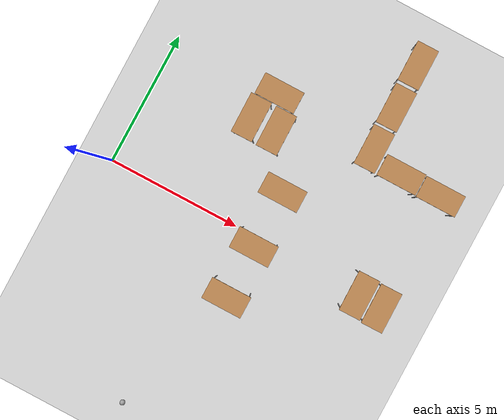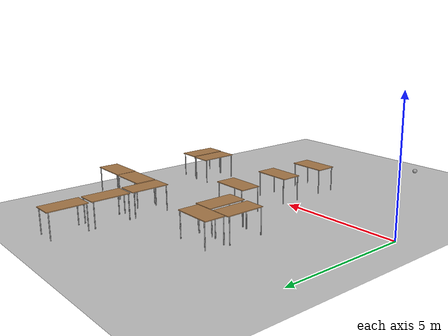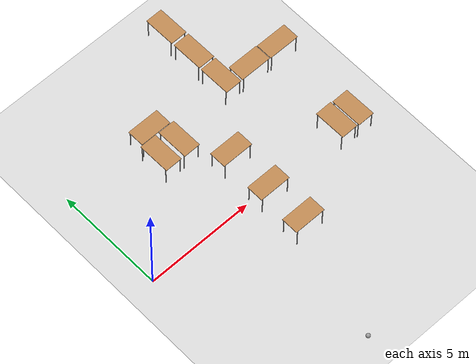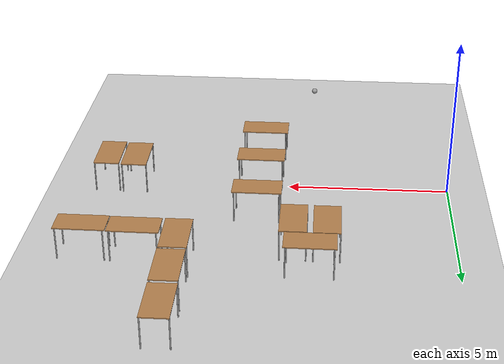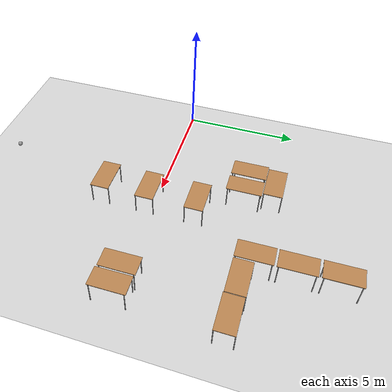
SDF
<sdf version="1.6">
 <world name="default">
  <model name="ground_plane">
   <static>1</static>
   <link name="link">
    <collision name="collision">
     <geometry><plane><normal>0 0 1</normal><size>100 100</size></plane></geometry>
     <surface><friction><ode><mu>100</mu><mu2>50</mu2></ode></friction></surface>
    </collision>
    <visual name="visual">
     <cast_shadows>0</cast_shadows>
     <geometry><plane><normal>0 0 1</normal><size>100 100</size></plane></geometry>
     <material>
      <script><uri>file://media/materials/scripts/gazebo.material</uri><name>Gazebo/Grey</name></script>
     </material>
    </visual>
   </link>
  </model>
  <model name="table">
   <static>1</static>
   <link name="link">
    <collision name="surface">
     <pose>0 0 1 0 -0 0</pose>
     <geometry><box><size>1.5 0.8 0.03</size></box></geometry>
     <surface><friction><ode><mu>0.6</mu><mu2>0.6</mu2></ode></friction></surface>
    </collision>
    <visual name="visual1">
     <pose>0 0 1 0 -0 0</pose>
     <geometry><box><size>1.5 0.8 0.03</size></box></geometry>
     <material>
      <script><uri>file://media/materials/scripts/gazebo.material</uri><name>Gazebo/Wood</name></script>
     </material>
    </visual>
    <collision name="front_left_leg">
     <pose>0.68 0.38 0.5 0 -0 0</pose>
     <geometry><cylinder><radius>0.02</radius><length>1</length></cylinder></geometry>
    </collision>
    <visual name="front_left_leg">
     <pose>0.68 0.38 0.5 0 -0 0</pose>
     <geometry><cylinder><radius>0.02</radius><length>1</length></cylinder></geometry>
     <material>
      <script><uri>file://media/materials/scripts/gazebo.material</uri><name>Gazebo/Grey</name></script>
     </material>
    </visual>
    <collision name="front_right_leg">
     <pose>0.68 -0.38 0.5 0 -0 0</pose>
     <geometry><cylinder><radius>0.02</radius><length>1</length></cylinder></geometry>
    </collision>
    <visual name="front_right_leg">
     <pose>0.68 -0.38 0.5 0 -0 0</pose>
     <geometry><cylinder><radius>0.02</radius><length>1</length></cylinder></geometry>
     <material>
      <script><uri>file://media/materials/scripts/gazebo.material</uri><name>Gazebo/Grey</name></script>
     </material>
    </visual>
    <collision name="back_right_leg">
     <pose>-0.68 -0.38 0.5 0 -0 0</pose>
     <geometry><cylinder><radius>0.02</radius><length>1</length></cylinder></geometry>
    </collision>
    <visual name="back_right_leg">
     <pose>-0.68 -0.38 0.5 0 -0 0</pose>
     <geometry><cylinder><radius>0.02</radius><length>1</length></cylinder></geometry>
     <material>
      <script><uri>file://media/materials/scripts/gazebo.material</uri><name>Gazebo/Grey</name></script>
     </material>
    </visual>
    <collision name="back_left_leg">
     <pose>-0.68 0.38 0.5 0 -0 0</pose>
     <geometry><cylinder><radius>0.02</radius><length>1</length></cylinder></geometry>
    </collision>
    <visual name="back_left_leg">
     <pose>-0.68 0.38 0.5 0 -0 0</pose>
     <geometry><cylinder><radius>0.02</radius><length>1</length></cylinder></geometry>
     <material>
      <script><uri>file://media/materials/scripts/gazebo.material</uri><name>Gazebo/Grey</name></script>
     </material>
    </visual>
   </link>
   <pose>9.1747 4.28247 0 0 -0 0</pose>
  </model>
  <model name="table_clone">
   <static>1</static>
   <link name="link">
    <collision name="surface">
     <pose>0 0 1 0 -0 0</pose>
     <geometry><box><size>1.5 0.8 0.03</size></box></geometry>
     <surface><friction><ode><mu>0.6</mu><mu2>0.6</mu2></ode></friction></surface>
    </collision>
    <visual name="visual1">
     <pose>0 0 1 0 -0 0</pose>
     <geometry><box><size>1.5 0.8 0.03</size></box></geometry>
     <material>
      <script><uri>file://media/materials/scripts/gazebo.material</uri><name>Gazebo/Wood</name></script>
     </material>
    </visual>
    <collision name="front_left_leg">
     <pose>0.68 0.38 0.5 0 -0 0</pose>
     <geometry><cylinder><radius>0.02</radius><length>1</length></cylinder></geometry>
    </collision>
    <visual name="front_left_leg">
     <pose>0.68 0.38 0.5 0 -0 0</pose>
     <geometry><cylinder><radius>0.02</radius><length>1</length></cylinder></geometry>
     <material>
      <script><uri>file://media/materials/scripts/gazebo.material</uri><name>Gazebo/Grey</name></script>
     </material>
    </visual>
    <collision name="front_right_leg">
     <pose>0.68 -0.38 0.5 0 -0 0</pose>
     <geometry><cylinder><radius>0.02</radius><length>1</length></cylinder></geometry>
    </collision>
    <visual name="front_right_leg">
     <pose>0.68 -0.38 0.5 0 -0 0</pose>
     <geometry><cylinder><radius>0.02</radius><length>1</length></cylinder></geometry>
     <material>
      <script><uri>file://media/materials/scripts/gazebo.material</uri><name>Gazebo/Grey</name></script>
     </material>
    </visual>
    <collision name="back_right_leg">
     <pose>-0.68 -0.38 0.5 0 -0 0</pose>
     <geometry><cylinder><radius>0.02</radius><length>1</length></cylinder></geometry>
    </collision>
    <visual name="back_right_leg">
     <pose>-0.68 -0.38 0.5 0 -0 0</pose>
     <geometry><cylinder><radius>0.02</radius><length>1</length></cylinder></geometry>
     <material>
      <script><uri>file://media/materials/scripts/gazebo.material</uri><name>Gazebo/Grey</name></script>
     </material>
    </visual>
    <collision name="back_left_leg">
     <pose>-0.68 0.38 0.5 0 -0 0</pose>
     <geometry><cylinder><radius>0.02</radius><length>1</length></cylinder></geometry>
    </collision>
    <visual name="back_left_leg">
     <pose>-0.68 0.38 0.5 0 -0 0</pose>
     <geometry><cylinder><radius>0.02</radius><length>1</length></cylinder></geometry>
     <material>
      <script><uri>file://media/materials/scripts/gazebo.material</uri><name>Gazebo/Grey</name></script>
     </material>
    </visual>
   </link>
   <pose>10.7045 4.25971 0 0 -0 0</pose>
  </model>
  <model name="table_clone_3">
   <static>1</static>
   <link name="link">
    <collision name="surface">
     <pose>0 0 1 0 -0 0</pose>
     <geometry><box><size>1.5 0.8 0.03</size></box></geometry>
     <surface><friction><ode><mu>0.6</mu><mu2>0.6</mu2></ode></friction></surface>
    </collision>
    <visual name="visual1">
     <pose>0 0 1 0 -0 0</pose>
     <geometry><box><size>1.5 0.8 0.03</size></box></geometry>
     <material>
      <script><uri>file://media/materials/scripts/gazebo.material</uri><name>Gazebo/Wood</name></script>
     </material>
    </visual>
    <collision name="front_left_leg">
     <pose>0.68 0.38 0.5 0 -0 0</pose>
     <geometry><cylinder><radius>0.02</radius><length>1</length></cylinder></geometry>
    </collision>
    <visual name="front_left_leg">
     <pose>0.68 0.38 0.5 0 -0 0</pose>
     <geometry><cylinder><radius>0.02</radius><length>1</length></cylinder></geometry>
     <material>
      <script><uri>file://media/materials/scripts/gazebo.material</uri><name>Gazebo/Grey</name></script>
     </material>
    </visual>
    <collision name="front_right_leg">
     <pose>0.68 -0.38 0.5 0 -0 0</pose>
     <geometry><cylinder><radius>0.02</radius><length>1</length></cylinder></geometry>
    </collision>
    <visual name="front_right_leg">
     <pose>0.68 -0.38 0.5 0 -0 0</pose>
     <geometry><cylinder><radius>0.02</radius><length>1</length></cylinder></geometry>
     <material>
      <script><uri>file://media/materials/scripts/gazebo.material</uri><name>Gazebo/Grey</name></script>
     </material>
    </visual>
    <collision name="back_right_leg">
     <pose>-0.68 -0.38 0.5 0 -0 0</pose>
     <geometry><cylinder><radius>0.02</radius><length>1</length></cylinder></geometry>
    </collision>
    <visual name="back_right_leg">
     <pose>-0.68 -0.38 0.5 0 -0 0</pose>
     <geometry><cylinder><radius>0.02</radius><length>1</length></cylinder></geometry>
     <material>
      <script><uri>file://media/materials/scripts/gazebo.material</uri><name>Gazebo/Grey</name></script>
     </material>
    </visual>
    <collision name="back_left_leg">
     <pose>-0.68 0.38 0.5 0 -0 0</pose>
     <geometry><cylinder><radius>0.02</radius><length>1</length></cylinder></geometry>
    </collision>
    <visual name="back_left_leg">
     <pose>-0.68 0.38 0.5 0 -0 0</pose>
     <geometry><cylinder><radius>0.02</radius><length>1</length></cylinder></geometry>
     <material>
      <script><uri>file://media/materials/scripts/gazebo.material</uri><name>Gazebo/Grey</name></script>
     </material>
    </visual>
   </link>
   <pose>7.94216 4.62597 0 0 0 -1.56261</pose>
  </model>
  <model name="table_clone_3_clone">
   <static>1</static>
   <link name="link">
    <collision name="surface">
     <pose>0 0 1 0 -0 0</pose>
     <geometry><box><size>1.5 0.8 0.03</size></box></geometry>
     <surface><friction><ode><mu>0.6</mu><mu2>0.6</mu2></ode></friction></surface>
    </collision>
    <visual name="visual1">
     <pose>0 0 1 0 -0 0</pose>
     <geometry><box><size>1.5 0.8 0.03</size></box></geometry>
     <material>
      <script><uri>file://media/materials/scripts/gazebo.material</uri><name>Gazebo/Wood</name></script>
     </material>
    </visual>
    <collision name="front_left_leg">
     <pose>0.68 0.38 0.5 0 -0 0</pose>
     <geometry><cylinder><radius>0.02</radius><length>1</length></cylinder></geometry>
    </collision>
    <visual name="front_left_leg">
     <pose>0.68 0.38 0.5 0 -0 0</pose>
     <geometry><cylinder><radius>0.02</radius><length>1</length></cylinder></geometry>
     <material>
      <script><uri>file://media/materials/scripts/gazebo.material</uri><name>Gazebo/Grey</name></script>
     </material>
    </visual>
    <collision name="front_right_leg">
     <pose>0.68 -0.38 0.5 0 -0 0</pose>
     <geometry><cylinder><radius>0.02</radius><length>1</length></cylinder></geometry>
    </collision>
    <visual name="front_right_leg">
     <pose>0.68 -0.38 0.5 0 -0 0</pose>
     <geometry><cylinder><radius>0.02</radius><length>1</length></cylinder></geometry>
     <material>
      <script><uri>file://media/materials/scripts/gazebo.material</uri><name>Gazebo/Grey</name></script>
     </material>
    </visual>
    <collision name="back_right_leg">
     <pose>-0.68 -0.38 0.5 0 -0 0</pose>
     <geometry><cylinder><radius>0.02</radius><length>1</length></cylinder></geometry>
    </collision>
    <visual name="back_right_leg">
     <pose>-0.68 -0.38 0.5 0 -0 0</pose>
     <geometry><cylinder><radius>0.02</radius><length>1</length></cylinder></geometry>
     <material>
      <script><uri>file://media/materials/scripts/gazebo.material</uri><name>Gazebo/Grey</name></script>
     </material>
    </visual>
    <collision name="back_left_leg">
     <pose>-0.68 0.38 0.5 0 -0 0</pose>
     <geometry><cylinder><radius>0.02</radius><length>1</length></cylinder></geometry>
    </collision>
    <visual name="back_left_leg">
     <pose>-0.68 0.38 0.5 0 -0 0</pose>
     <geometry><cylinder><radius>0.02</radius><length>1</length></cylinder></geometry>
     <material>
      <script><uri>file://media/materials/scripts/gazebo.material</uri><name>Gazebo/Grey</name></script>
     </material>
    </visual>
   </link>
   <pose>7.93938 6.21613 0 0 0 -1.56261</pose>
  </model>
  <model name="table_clone_3_clone_0">
   <static>1</static>
   <link name="link">
    <collision name="surface">
     <pose>0 0 1 0 -0 0</pose>
     <geometry><box><size>1.5 0.8 0.03</size></box></geometry>
     <surface><friction><ode><mu>0.6</mu><mu2>0.6</mu2></ode></friction></surface>
    </collision>
    <visual name="visual1">
     <pose>0 0 1 0 -0 0</pose>
     <geometry><box><size>1.5 0.8 0.03</size></box></geometry>
     <material>
      <script><uri>file://media/materials/scripts/gazebo.material</uri><name>Gazebo/Wood</name></script>
     </material>
    </visual>
    <collision name="front_left_leg">
     <pose>0.68 0.38 0.5 0 -0 0</pose>
     <geometry><cylinder><radius>0.02</radius><length>1</length></cylinder></geometry>
    </collision>
    <visual name="front_left_leg">
     <pose>0.68 0.38 0.5 0 -0 0</pose>
     <geometry><cylinder><radius>0.02</radius><length>1</length></cylinder></geometry>
     <material>
      <script><uri>file://media/materials/scripts/gazebo.material</uri><name>Gazebo/Grey</name></script>
     </material>
    </visual>
    <collision name="front_right_leg">
     <pose>0.68 -0.38 0.5 0 -0 0</pose>
     <geometry><cylinder><radius>0.02</radius><length>1</length></cylinder></geometry>
    </collision>
    <visual name="front_right_leg">
     <pose>0.68 -0.38 0.5 0 -0 0</pose>
     <geometry><cylinder><radius>0.02</radius><length>1</length></cylinder></geometry>
     <material>
      <script><uri>file://media/materials/scripts/gazebo.material</uri><name>Gazebo/Grey</name></script>
     </material>
    </visual>
    <collision name="back_right_leg">
     <pose>-0.68 -0.38 0.5 0 -0 0</pose>
     <geometry><cylinder><radius>0.02</radius><length>1</length></cylinder></geometry>
    </collision>
    <visual name="back_right_leg">
     <pose>-0.68 -0.38 0.5 0 -0 0</pose>
     <geometry><cylinder><radius>0.02</radius><length>1</length></cylinder></geometry>
     <material>
      <script><uri>file://media/materials/scripts/gazebo.material</uri><name>Gazebo/Grey</name></script>
     </material>
    </visual>
    <collision name="back_left_leg">
     <pose>-0.68 0.38 0.5 0 -0 0</pose>
     <geometry><cylinder><radius>0.02</radius><length>1</length></cylinder></geometry>
    </collision>
    <visual name="back_left_leg">
     <pose>-0.68 0.38 0.5 0 -0 0</pose>
     <geometry><cylinder><radius>0.02</radius><length>1</length></cylinder></geometry>
     <material>
      <script><uri>file://media/materials/scripts/gazebo.material</uri><name>Gazebo/Grey</name></script>
     </material>
    </visual>
   </link>
   <pose>7.91682 7.82934 0 0 0 -1.56261</pose>
  </model>
  <model name="table_clone_3_clone_8">
   <static>1</static>
   <link name="link">
    <collision name="surface">
     <pose>0 0 1 0 -0 0</pose>
     <geometry><box><size>1.5 0.8 0.03</size></box></geometry>
     <surface><friction><ode><mu>0.6</mu><mu2>0.6</mu2></ode></friction></surface>
    </collision>
    <visual name="visual1">
     <pose>0 0 1 0 -0 0</pose>
     <geometry><box><size>1.5 0.8 0.03</size></box></geometry>
     <material>
      <script><uri>file://media/materials/scripts/gazebo.material</uri><name>Gazebo/Wood</name></script>
     </material>
    </visual>
    <collision name="front_left_leg">
     <pose>0.68 0.38 0.5 0 -0 0</pose>
     <geometry><cylinder><radius>0.02</radius><length>1</length></cylinder></geometry>
    </collision>
    <visual name="front_left_leg">
     <pose>0.68 0.38 0.5 0 -0 0</pose>
     <geometry><cylinder><radius>0.02</radius><length>1</length></cylinder></geometry>
     <material>
      <script><uri>file://media/materials/scripts/gazebo.material</uri><name>Gazebo/Grey</name></script>
     </material>
    </visual>
    <collision name="front_right_leg">
     <pose>0.68 -0.38 0.5 0 -0 0</pose>
     <geometry><cylinder><radius>0.02</radius><length>1</length></cylinder></geometry>
    </collision>
    <visual name="front_right_leg">
     <pose>0.68 -0.38 0.5 0 -0 0</pose>
     <geometry><cylinder><radius>0.02</radius><length>1</length></cylinder></geometry>
     <material>
      <script><uri>file://media/materials/scripts/gazebo.material</uri><name>Gazebo/Grey</name></script>
     </material>
    </visual>
    <collision name="back_right_leg">
     <pose>-0.68 -0.38 0.5 0 -0 0</pose>
     <geometry><cylinder><radius>0.02</radius><length>1</length></cylinder></geometry>
    </collision>
    <visual name="back_right_leg">
     <pose>-0.68 -0.38 0.5 0 -0 0</pose>
     <geometry><cylinder><radius>0.02</radius><length>1</length></cylinder></geometry>
     <material>
      <script><uri>file://media/materials/scripts/gazebo.material</uri><name>Gazebo/Grey</name></script>
     </material>
    </visual>
    <collision name="back_left_leg">
     <pose>-0.68 0.38 0.5 0 -0 0</pose>
     <geometry><cylinder><radius>0.02</radius><length>1</length></cylinder></geometry>
    </collision>
    <visual name="back_left_leg">
     <pose>-0.68 0.38 0.5 0 -0 0</pose>
     <geometry><cylinder><radius>0.02</radius><length>1</length></cylinder></geometry>
     <material>
      <script><uri>file://media/materials/scripts/gazebo.material</uri><name>Gazebo/Grey</name></script>
     </material>
    </visual>
   </link>
   <pose>10.7347 -0.051072 0 0 0 -1.56261</pose>
  </model>
  <model name="table_clone_3_clone_9">
   <static>1</static>
   <link name="link">
    <collision name="surface">
     <pose>0 0 1 0 -0 0</pose>
     <geometry><box><size>1.5 0.8 0.03</size></box></geometry>
     <surface><friction><ode><mu>0.6</mu><mu2>0.6</mu2></ode></friction></surface>
    </collision>
    <visual name="visual1">
     <pose>0 0 1 0 -0 0</pose>
     <geometry><box><size>1.5 0.8 0.03</size></box></geometry>
     <material>
      <script><uri>file://media/materials/scripts/gazebo.material</uri><name>Gazebo/Wood</name></script>
     </material>
    </visual>
    <collision name="front_left_leg">
     <pose>0.68 0.38 0.5 0 -0 0</pose>
     <geometry><cylinder><radius>0.02</radius><length>1</length></cylinder></geometry>
    </collision>
    <visual name="front_left_leg">
     <pose>0.68 0.38 0.5 0 -0 0</pose>
     <geometry><cylinder><radius>0.02</radius><length>1</length></cylinder></geometry>
     <material>
      <script><uri>file://media/materials/scripts/gazebo.material</uri><name>Gazebo/Grey</name></script>
     </material>
    </visual>
    <collision name="front_right_leg">
     <pose>0.68 -0.38 0.5 0 -0 0</pose>
     <geometry><cylinder><radius>0.02</radius><length>1</length></cylinder></geometry>
    </collision>
    <visual name="front_right_leg">
     <pose>0.68 -0.38 0.5 0 -0 0</pose>
     <geometry><cylinder><radius>0.02</radius><length>1</length></cylinder></geometry>
     <material>
      <script><uri>file://media/materials/scripts/gazebo.material</uri><name>Gazebo/Grey</name></script>
     </material>
    </visual>
    <collision name="back_right_leg">
     <pose>-0.68 -0.38 0.5 0 -0 0</pose>
     <geometry><cylinder><radius>0.02</radius><length>1</length></cylinder></geometry>
    </collision>
    <visual name="back_right_leg">
     <pose>-0.68 -0.38 0.5 0 -0 0</pose>
     <geometry><cylinder><radius>0.02</radius><length>1</length></cylinder></geometry>
     <material>
      <script><uri>file://media/materials/scripts/gazebo.material</uri><name>Gazebo/Grey</name></script>
     </material>
    </visual>
    <collision name="back_left_leg">
     <pose>-0.68 0.38 0.5 0 -0 0</pose>
     <geometry><cylinder><radius>0.02</radius><length>1</length></cylinder></geometry>
    </collision>
    <visual name="back_left_leg">
     <pose>-0.68 0.38 0.5 0 -0 0</pose>
     <geometry><cylinder><radius>0.02</radius><length>1</length></cylinder></geometry>
     <material>
      <script><uri>file://media/materials/scripts/gazebo.material</uri><name>Gazebo/Grey</name></script>
     </material>
    </visual>
   </link>
   <pose>9.86319 -0.016888 0 0 0 -1.56261</pose>
  </model>
  <model name="table_clone_4">
   <static>1</static>
   <link name="link">
    <collision name="surface">
     <pose>0 0 1 0 -0 0</pose>
     <geometry><box><size>1.5 0.8 0.03</size></box></geometry>
     <surface><friction><ode><mu>0.6</mu><mu2>0.6</mu2></ode></friction></surface>
    </collision>
    <visual name="visual1">
     <pose>0 0 1 0 -0 0</pose>
     <geometry><box><size>1.5 0.8 0.03</size></box></geometry>
     <material>
      <script><uri>file://media/materials/scripts/gazebo.material</uri><name>Gazebo/Wood</name></script>
     </material>
    </visual>
    <collision name="front_left_leg">
     <pose>0.68 0.38 0.5 0 -0 0</pose>
     <geometry><cylinder><radius>0.02</radius><length>1</length></cylinder></geometry>
    </collision>
    <visual name="front_left_leg">
     <pose>0.68 0.38 0.5 0 -0 0</pose>
     <geometry><cylinder><radius>0.02</radius><length>1</length></cylinder></geometry>
     <material>
      <script><uri>file://media/materials/scripts/gazebo.material</uri><name>Gazebo/Grey</name></script>
     </material>
    </visual>
    <collision name="front_right_leg">
     <pose>0.68 -0.38 0.5 0 -0 0</pose>
     <geometry><cylinder><radius>0.02</radius><length>1</length></cylinder></geometry>
    </collision>
    <visual name="front_right_leg">
     <pose>0.68 -0.38 0.5 0 -0 0</pose>
     <geometry><cylinder><radius>0.02</radius><length>1</length></cylinder></geometry>
     <material>
      <script><uri>file://media/materials/scripts/gazebo.material</uri><name>Gazebo/Grey</name></script>
     </material>
    </visual>
    <collision name="back_right_leg">
     <pose>-0.68 -0.38 0.5 0 -0 0</pose>
     <geometry><cylinder><radius>0.02</radius><length>1</length></cylinder></geometry>
    </collision>
    <visual name="back_right_leg">
     <pose>-0.68 -0.38 0.5 0 -0 0</pose>
     <geometry><cylinder><radius>0.02</radius><length>1</length></cylinder></geometry>
     <material>
      <script><uri>file://media/materials/scripts/gazebo.material</uri><name>Gazebo/Grey</name></script>
     </material>
    </visual>
    <collision name="back_left_leg">
     <pose>-0.68 0.38 0.5 0 -0 0</pose>
     <geometry><cylinder><radius>0.02</radius><length>1</length></cylinder></geometry>
    </collision>
    <visual name="back_left_leg">
     <pose>-0.68 0.38 0.5 0 -0 0</pose>
     <geometry><cylinder><radius>0.02</radius><length>1</length></cylinder></geometry>
     <material>
      <script><uri>file://media/materials/scripts/gazebo.material</uri><name>Gazebo/Grey</name></script>
     </material>
    </visual>
   </link>
   <pose>5.89886 -2.22809 0 0 -0 0</pose>
  </model>
  <model name="table_clone_5">
   <static>1</static>
   <link name="link">
    <collision name="surface">
     <pose>0 0 1 0 -0 0</pose>
     <geometry><box><size>1.5 0.8 0.03</size></box></geometry>
     <surface><friction><ode><mu>0.6</mu><mu2>0.6</mu2></ode></friction></surface>
    </collision>
    <visual name="visual1">
     <pose>0 0 1 0 -0 0</pose>
     <geometry><box><size>1.5 0.8 0.03</size></box></geometry>
     <material>
      <script><uri>file://media/materials/scripts/gazebo.material</uri><name>Gazebo/Wood</name></script>
     </material>
    </visual>
    <collision name="front_left_leg">
     <pose>0.68 0.38 0.5 0 -0 0</pose>
     <geometry><cylinder><radius>0.02</radius><length>1</length></cylinder></geometry>
    </collision>
    <visual name="front_left_leg">
     <pose>0.68 0.38 0.5 0 -0 0</pose>
     <geometry><cylinder><radius>0.02</radius><length>1</length></cylinder></geometry>
     <material>
      <script><uri>file://media/materials/scripts/gazebo.material</uri><name>Gazebo/Grey</name></script>
     </material>
    </visual>
    <collision name="front_right_leg">
     <pose>0.68 -0.38 0.5 0 -0 0</pose>
     <geometry><cylinder><radius>0.02</radius><length>1</length></cylinder></geometry>
    </collision>
    <visual name="front_right_leg">
     <pose>0.68 -0.38 0.5 0 -0 0</pose>
     <geometry><cylinder><radius>0.02</radius><length>1</length></cylinder></geometry>
     <material>
      <script><uri>file://media/materials/scripts/gazebo.material</uri><name>Gazebo/Grey</name></script>
     </material>
    </visual>
    <collision name="back_right_leg">
     <pose>-0.68 -0.38 0.5 0 -0 0</pose>
     <geometry><cylinder><radius>0.02</radius><length>1</length></cylinder></geometry>
    </collision>
    <visual name="back_right_leg">
     <pose>-0.68 -0.38 0.5 0 -0 0</pose>
     <geometry><cylinder><radius>0.02</radius><length>1</length></cylinder></geometry>
     <material>
      <script><uri>file://media/materials/scripts/gazebo.material</uri><name>Gazebo/Grey</name></script>
     </material>
    </visual>
    <collision name="back_left_leg">
     <pose>-0.68 0.38 0.5 0 -0 0</pose>
     <geometry><cylinder><radius>0.02</radius><length>1</length></cylinder></geometry>
    </collision>
    <visual name="back_left_leg">
     <pose>-0.68 0.38 0.5 0 -0 0</pose>
     <geometry><cylinder><radius>0.02</radius><length>1</length></cylinder></geometry>
     <material>
      <script><uri>file://media/materials/scripts/gazebo.material</uri><name>Gazebo/Grey</name></script>
     </material>
    </visual>
   </link>
   <pose>5.90615 -0.258997 0 0 -0 0</pose>
  </model>
  <model name="table_clone_6">
   <static>1</static>
   <link name="link">
    <collision name="surface">
     <pose>0 0 1 0 -0 0</pose>
     <geometry><box><size>1.5 0.8 0.03</size></box></geometry>
     <surface><friction><ode><mu>0.6</mu><mu2>0.6</mu2></ode></friction></surface>
    </collision>
    <visual name="visual1">
     <pose>0 0 1 0 -0 0</pose>
     <geometry><box><size>1.5 0.8 0.03</size></box></geometry>
     <material>
      <script><uri>file://media/materials/scripts/gazebo.material</uri><name>Gazebo/Wood</name></script>
     </material>
    </visual>
    <collision name="front_left_leg">
     <pose>0.68 0.38 0.5 0 -0 0</pose>
     <geometry><cylinder><radius>0.02</radius><length>1</length></cylinder></geometry>
    </collision>
    <visual name="front_left_leg">
     <pose>0.68 0.38 0.5 0 -0 0</pose>
     <geometry><cylinder><radius>0.02</radius><length>1</length></cylinder></geometry>
     <material>
      <script><uri>file://media/materials/scripts/gazebo.material</uri><name>Gazebo/Grey</name></script>
     </material>
    </visual>
    <collision name="front_right_leg">
     <pose>0.68 -0.38 0.5 0 -0 0</pose>
     <geometry><cylinder><radius>0.02</radius><length>1</length></cylinder></geometry>
    </collision>
    <visual name="front_right_leg">
     <pose>0.68 -0.38 0.5 0 -0 0</pose>
     <geometry><cylinder><radius>0.02</radius><length>1</length></cylinder></geometry>
     <material>
      <script><uri>file://media/materials/scripts/gazebo.material</uri><name>Gazebo/Grey</name></script>
     </material>
    </visual>
    <collision name="back_right_leg">
     <pose>-0.68 -0.38 0.5 0 -0 0</pose>
     <geometry><cylinder><radius>0.02</radius><length>1</length></cylinder></geometry>
    </collision>
    <visual name="back_right_leg">
     <pose>-0.68 -0.38 0.5 0 -0 0</pose>
     <geometry><cylinder><radius>0.02</radius><length>1</length></cylinder></geometry>
     <material>
      <script><uri>file://media/materials/scripts/gazebo.material</uri><name>Gazebo/Grey</name></script>
     </material>
    </visual>
    <collision name="back_left_leg">
     <pose>-0.68 0.38 0.5 0 -0 0</pose>
     <geometry><cylinder><radius>0.02</radius><length>1</length></cylinder></geometry>
    </collision>
    <visual name="back_left_leg">
     <pose>-0.68 0.38 0.5 0 -0 0</pose>
     <geometry><cylinder><radius>0.02</radius><length>1</length></cylinder></geometry>
     <material>
      <script><uri>file://media/materials/scripts/gazebo.material</uri><name>Gazebo/Grey</name></script>
     </material>
    </visual>
   </link>
   <pose>5.88642 1.84646 0 0 -0 0</pose>
  </model>
  <model name="table_clone_3_clone_8_clone">
   <static>1</static>
   <link name="link">
    <collision name="surface">
     <pose>0 0 1 0 -0 0</pose>
     <geometry><box><size>1.5 0.8 0.03</size></box></geometry>
     <surface><friction><ode><mu>0.6</mu><mu2>0.6</mu2></ode></friction></surface>
    </collision>
    <visual name="visual1">
     <pose>0 0 1 0 -0 0</pose>
     <geometry><box><size>1.5 0.8 0.03</size></box></geometry>
     <material>
      <script><uri>file://media/materials/scripts/gazebo.material</uri><name>Gazebo/Wood</name></script>
     </material>
    </visual>
    <collision name="front_left_leg">
     <pose>0.68 0.38 0.5 0 -0 0</pose>
     <geometry><cylinder><radius>0.02</radius><length>1</length></cylinder></geometry>
    </collision>
    <visual name="front_left_leg">
     <pose>0.68 0.38 0.5 0 -0 0</pose>
     <geometry><cylinder><radius>0.02</radius><length>1</length></cylinder></geometry>
     <material>
      <script><uri>file://media/materials/scripts/gazebo.material</uri><name>Gazebo/Grey</name></script>
     </material>
    </visual>
    <collision name="front_right_leg">
     <pose>0.68 -0.38 0.5 0 -0 0</pose>
     <geometry><cylinder><radius>0.02</radius><length>1</length></cylinder></geometry>
    </collision>
    <visual name="front_right_leg">
     <pose>0.68 -0.38 0.5 0 -0 0</pose>
     <geometry><cylinder><radius>0.02</radius><length>1</length></cylinder></geometry>
     <material>
      <script><uri>file://media/materials/scripts/gazebo.material</uri><name>Gazebo/Grey</name></script>
     </material>
    </visual>
    <collision name="back_right_leg">
     <pose>-0.68 -0.38 0.5 0 -0 0</pose>
     <geometry><cylinder><radius>0.02</radius><length>1</length></cylinder></geometry>
    </collision>
    <visual name="back_right_leg">
     <pose>-0.68 -0.38 0.5 0 -0 0</pose>
     <geometry><cylinder><radius>0.02</radius><length>1</length></cylinder></geometry>
     <material>
      <script><uri>file://media/materials/scripts/gazebo.material</uri><name>Gazebo/Grey</name></script>
     </material>
    </visual>
    <collision name="back_left_leg">
     <pose>-0.68 0.38 0.5 0 -0 0</pose>
     <geometry><cylinder><radius>0.02</radius><length>1</length></cylinder></geometry>
    </collision>
    <visual name="back_left_leg">
     <pose>-0.68 0.38 0.5 0 -0 0</pose>
     <geometry><cylinder><radius>0.02</radius><length>1</length></cylinder></geometry>
     <material>
      <script><uri>file://media/materials/scripts/gazebo.material</uri><name>Gazebo/Grey</name></script>
     </material>
    </visual>
   </link>
   <pose>4.7121 3.5876 0 0 0 -1.56261</pose>
  </model>
  <model name="table_clone_3_clone_8_clone_0">
   <static>1</static>
   <link name="link">
    <collision name="surface">
     <pose>0 0 1 0 -0 0</pose>
     <geometry><box><size>1.5 0.8 0.03</size></box></geometry>
     <surface><friction><ode><mu>0.6</mu><mu2>0.6</mu2></ode></friction></surface>
    </collision>
    <visual name="visual1">
     <pose>0 0 1 0 -0 0</pose>
     <geometry><box><size>1.5 0.8 0.03</size></box></geometry>
     <material>
      <script><uri>file://media/materials/scripts/gazebo.material</uri><name>Gazebo/Wood</name></script>
     </material>
    </visual>
    <collision name="front_left_leg">
     <pose>0.68 0.38 0.5 0 -0 0</pose>
     <geometry><cylinder><radius>0.02</radius><length>1</length></cylinder></geometry>
    </collision>
    <visual name="front_left_leg">
     <pose>0.68 0.38 0.5 0 -0 0</pose>
     <geometry><cylinder><radius>0.02</radius><length>1</length></cylinder></geometry>
     <material>
      <script><uri>file://media/materials/scripts/gazebo.material</uri><name>Gazebo/Grey</name></script>
     </material>
    </visual>
    <collision name="front_right_leg">
     <pose>0.68 -0.38 0.5 0 -0 0</pose>
     <geometry><cylinder><radius>0.02</radius><length>1</length></cylinder></geometry>
    </collision>
    <visual name="front_right_leg">
     <pose>0.68 -0.38 0.5 0 -0 0</pose>
     <geometry><cylinder><radius>0.02</radius><length>1</length></cylinder></geometry>
     <material>
      <script><uri>file://media/materials/scripts/gazebo.material</uri><name>Gazebo/Grey</name></script>
     </material>
    </visual>
    <collision name="back_right_leg">
     <pose>-0.68 -0.38 0.5 0 -0 0</pose>
     <geometry><cylinder><radius>0.02</radius><length>1</length></cylinder></geometry>
    </collision>
    <visual name="back_right_leg">
     <pose>-0.68 -0.38 0.5 0 -0 0</pose>
     <geometry><cylinder><radius>0.02</radius><length>1</length></cylinder></geometry>
     <material>
      <script><uri>file://media/materials/scripts/gazebo.material</uri><name>Gazebo/Grey</name></script>
     </material>
    </visual>
    <collision name="back_left_leg">
     <pose>-0.68 0.38 0.5 0 -0 0</pose>
     <geometry><cylinder><radius>0.02</radius><length>1</length></cylinder></geometry>
    </collision>
    <visual name="back_left_leg">
     <pose>-0.68 0.38 0.5 0 -0 0</pose>
     <geometry><cylinder><radius>0.02</radius><length>1</length></cylinder></geometry>
     <material>
      <script><uri>file://media/materials/scripts/gazebo.material</uri><name>Gazebo/Grey</name></script>
     </material>
    </visual>
   </link>
   <pose>3.7455 3.59658 0 0 0 -1.56261</pose>
  </model>
  <model name="table_clone_7">
   <static>1</static>
   <link name="link">
    <collision name="surface">
     <pose>0 0 1 0 -0 0</pose>
     <geometry><box><size>1.5 0.8 0.03</size></box></geometry>
     <surface><friction><ode><mu>0.6</mu><mu2>0.6</mu2></ode></friction></surface>
    </collision>
    <visual name="visual1">
     <pose>0 0 1 0 -0 0</pose>
     <geometry><box><size>1.5 0.8 0.03</size></box></geometry>
     <material>
      <script><uri>file://media/materials/scripts/gazebo.material</uri><name>Gazebo/Wood</name></script>
     </material>
    </visual>
    <collision name="front_left_leg">
     <pose>0.68 0.38 0.5 0 -0 0</pose>
     <geometry><cylinder><radius>0.02</radius><length>1</length></cylinder></geometry>
    </collision>
    <visual name="front_left_leg">
     <pose>0.68 0.38 0.5 0 -0 0</pose>
     <geometry><cylinder><radius>0.02</radius><length>1</length></cylinder></geometry>
     <material>
      <script><uri>file://media/materials/scripts/gazebo.material</uri><name>Gazebo/Grey</name></script>
     </material>
    </visual>
    <collision name="front_right_leg">
     <pose>0.68 -0.38 0.5 0 -0 0</pose>
     <geometry><cylinder><radius>0.02</radius><length>1</length></cylinder></geometry>
    </collision>
    <visual name="front_right_leg">
     <pose>0.68 -0.38 0.5 0 -0 0</pose>
     <geometry><cylinder><radius>0.02</radius><length>1</length></cylinder></geometry>
     <material>
      <script><uri>file://media/materials/scripts/gazebo.material</uri><name>Gazebo/Grey</name></script>
     </material>
    </visual>
    <collision name="back_right_leg">
     <pose>-0.68 -0.38 0.5 0 -0 0</pose>
     <geometry><cylinder><radius>0.02</radius><length>1</length></cylinder></geometry>
    </collision>
    <visual name="back_right_leg">
     <pose>-0.68 -0.38 0.5 0 -0 0</pose>
     <geometry><cylinder><radius>0.02</radius><length>1</length></cylinder></geometry>
     <material>
      <script><uri>file://media/materials/scripts/gazebo.material</uri><name>Gazebo/Grey</name></script>
     </material>
    </visual>
    <collision name="back_left_leg">
     <pose>-0.68 0.38 0.5 0 -0 0</pose>
     <geometry><cylinder><radius>0.02</radius><length>1</length></cylinder></geometry>
    </collision>
    <visual name="back_left_leg">
     <pose>-0.68 0.38 0.5 0 -0 0</pose>
     <geometry><cylinder><radius>0.02</radius><length>1</length></cylinder></geometry>
     <material>
      <script><uri>file://media/materials/scripts/gazebo.material</uri><name>Gazebo/Grey</name></script>
     </material>
    </visual>
   </link>
   <pose>4.19879 4.76877 0 0 -0 0</pose>
  </model>
  <model name="my_ball">
   <link name="link_1">
    <inertial>
     <mass>1</mass>
     <inertia><ixx>0.1</ixx><ixy>0</ixy><ixz>0</ixz><iyy>0.1</iyy><iyz>0</iyz><izz>0.1</izz></inertia>
    </inertial>
    <visual name="visual">
     <geometry><sphere><radius>0.1</radius></sphere></geometry>
     <material>
      <lighting>1</lighting>
      <script><uri>file://media/materials/scripts/gazebo.material</uri><name>Gazebo/Grey</name></script>
      <shader type="pixel"><normal_map>__default__</normal_map></shader>
      <ambient>1 1 1 1</ambient>
      <diffuse>1 1 1 1</diffuse>
      <specular>1 1 1 1</specular>
      <emissive>1 1 1 1</emissive>
     </material>
    </visual>
    <collision name="collision">
     <geometry><sphere><radius>0.1</radius></sphere></geometry>
     <surface>
      <friction>
       <ode><mu>1</mu><mu2>1</mu2><fdir1>0 0 0</fdir1><slip1>0</slip1><slip2>0</slip2></ode>
       <torsional>
        <coefficient>1</coefficient>
        <patch_radius>0</patch_radius>
        <surface_radius>0</surface_radius>
        <use_patch_radius>1</use_patch_radius>
        <ode><slip>0</slip></ode>
       </torsional>
      </friction>
      <bounce><restitution_coefficient>0</restitution_coefficient><threshold>1e+06</threshold></bounce>
      <contact>
       <collide_without_contact>0</collide_without_contact>
       <collide_without_contact_bitmask>1</collide_without_contact_bitmask>
       <collide_bitmask>1</collide_bitmask>
       <ode>
        <soft_cfm>0</soft_cfm>
        <soft_erp>0.2</soft_erp>
        <kp>1e+13</kp>
        <kd>1</kd>
        <max_vel>0.01</max_vel>
        <min_depth>0</min_depth>
       </ode>
       <bullet>
        <split_impulse>1</split_impulse>
        <split_impulse_penetration_threshold>-0.01</split_impulse_penetration_threshold>
        <soft_cfm>0</soft_cfm>
        <soft_erp>0.2</soft_erp>
        <kp>1e+13</kp>
        <kd>1</kd>
       </bullet>
      </contact>
     </surface>
    </collision>
   </link>
   <static>0</static>
   <pose>4.39627 -7.39042 0.1 1.16755 -0.444773 2.88316</pose>
  </model>
 </world>
</sdf>
